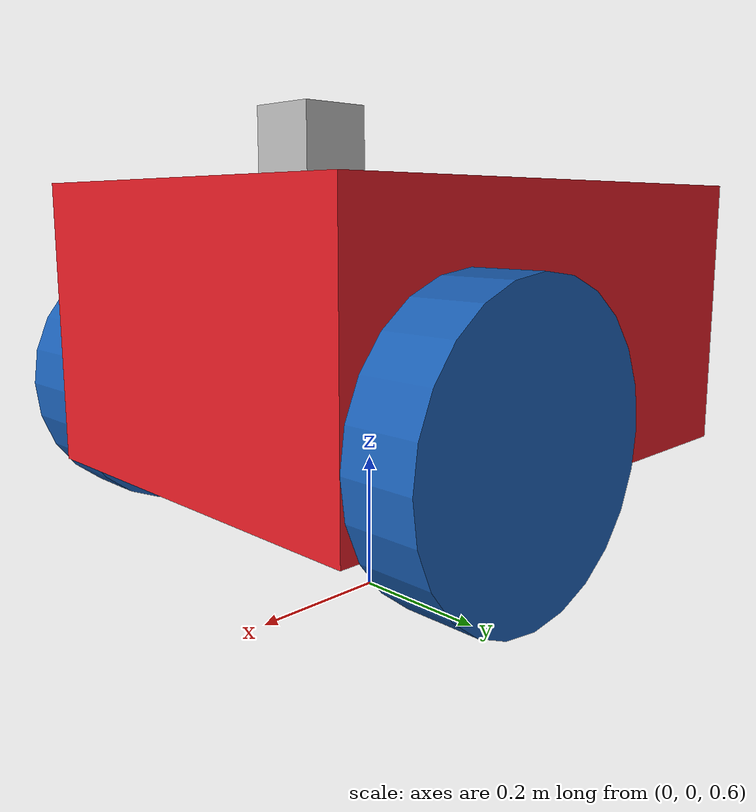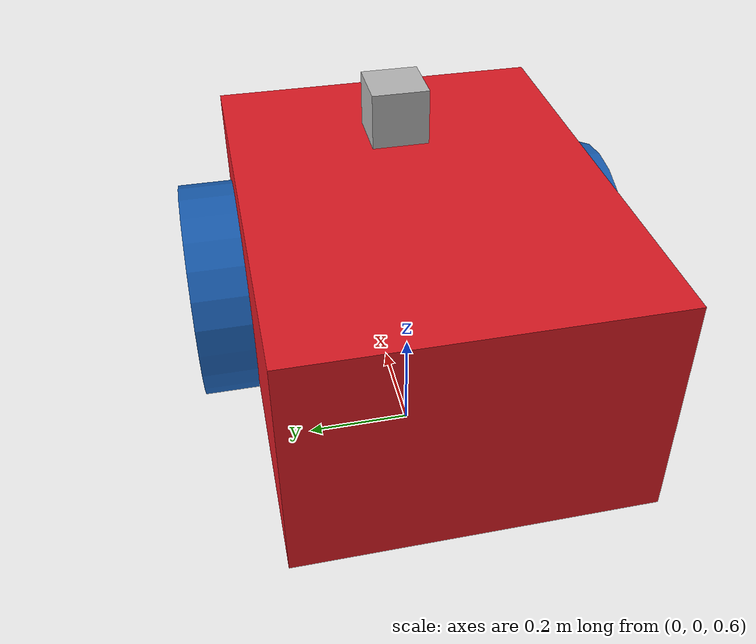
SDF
<?xml version='1.0'?>
<sdf version='1.7'>
  <model name='mobilerobot'>
    <link name='link_0'>
      <inertial>
        <mass>1164.77</mass>
        <inertia>
          <ixx>53.7577</ixx>
          <ixy>0</ixy>
          <ixz>0</ixz>
          <iyy>94.4479</iyy>
          <iyz>0</iyz>
          <izz>125.817</izz>
        </inertia>
        <pose>0 0 0 0 -0 0</pose>
      </inertial>
      <pose>-0.076555 -0.007597 1.000000 0 -0 0</pose>
      <gravity>1</gravity>
      <self_collide>0</self_collide>
      <kinematic>0</kinematic>
      <enable_wind>0</enable_wind>
      <visual name='visual'>
        <pose>0 0 0 0 -0 0</pose>
        <geometry>
          <box>
            <size>0.8 0.6 0.4</size>
          </box>
        </geometry>
        <material>
          <lighting>1</lighting>
          <script>
            <uri>file://media/materials/scripts/gazebo.material</uri>
            <name>Gazebo/Grey</name>
          </script>
          <shader type='pixel'>
            <normal_map>__default__</normal_map>
          </shader>
          <ambient>0.878 0.106 0.141 1</ambient>
          <diffuse>0.7 0.7 0.7 1</diffuse>
          <specular>0.01 0.01 0.01 1</specular>
          <emissive>0 0 0 1</emissive>
        </material>
        <transparency>0</transparency>
        <cast_shadows>1</cast_shadows>
      </visual>
      <collision name='collision'>
        <laser_retro>0</laser_retro>
        <max_contacts>10</max_contacts>
        <pose>0 0 0 0 -0 0</pose>
        <geometry>
          <box>
            <size>0.8 0.6 0.399999</size>
          </box>
        </geometry>
        <surface>
          <friction>
            <ode>
              <mu>1</mu>
              <mu2>1</mu2>
              <fdir1>0 0 0</fdir1>
              <slip1>0</slip1>
              <slip2>0</slip2>
            </ode>
            <torsional>
              <coefficient>1</coefficient>
              <patch_radius>0</patch_radius>
              <surface_radius>0</surface_radius>
              <use_patch_radius>1</use_patch_radius>
              <ode>
                <slip>0</slip>
              </ode>
            </torsional>
          </friction>
          <bounce>
            <restitution_coefficient>0</restitution_coefficient>
            <threshold>1e+06</threshold>
          </bounce>
          <contact>
            <collide_without_contact>0</collide_without_contact>
            <collide_without_contact_bitmask>1</collide_without_contact_bitmask>
            <collide_bitmask>1</collide_bitmask>
            <ode>
              <soft_cfm>0</soft_cfm>
              <soft_erp>0.2</soft_erp>
              <kp>1e+13</kp>
              <kd>1</kd>
              <max_vel>0.01</max_vel>
              <min_depth>0</min_depth>
            </ode>
            <bullet>
              <split_impulse>1</split_impulse>
              <split_impulse_penetration_threshold>-0.01</split_impulse_penetration_threshold>
              <soft_cfm>0</soft_cfm>
              <soft_erp>0.2</soft_erp>
              <kp>1e+13</kp>
              <kd>1</kd>
            </bullet>
          </contact>
        </surface>
      </collision>
    </link>
    <link name='link_1_clone'>
      <inertial>
        <mass>1</mass>
        <inertia>
          <ixx>0.145833</ixx>
          <ixy>0</ixy>
          <ixz>0</ixz>
          <iyy>0.145833</iyy>
          <iyz>0</iyz>
          <izz>0.125</izz>
        </inertia>
        <pose>0 0 0 0 -0 0</pose>
      </inertial>
      <pose>0.123444 0.342422 0.9 1.5707 -0 0</pose>
      <gravity>1</gravity>
      <self_collide>0</self_collide>
      <kinematic>0</kinematic>
      <enable_wind>0</enable_wind>
      <visual name='visual'>
        <pose>0 0 0 0 -0 0</pose>
        <geometry>
          <cylinder>
            <radius>0.2</radius>
            <length>0.1</length>
          </cylinder>
        </geometry>
        <material>
          <lighting>1</lighting>
          <script>
            <uri>file://media/materials/scripts/gazebo.material</uri>
            <name>Gazebo/Grey</name>
          </script>
          <shader type='pixel'>
            <normal_map>__default__</normal_map>
          </shader>
          <ambient>0.102 0.373 0.706 1</ambient>
          <diffuse>0.7 0.7 0.7 1</diffuse>
          <specular>0.01 0.01 0.01 1</specular>
          <emissive>0 0 0 1</emissive>
        </material>
        <transparency>0</transparency>
        <cast_shadows>1</cast_shadows>
      </visual>
      <collision name='collision'>
        <laser_retro>0</laser_retro>
        <max_contacts>10</max_contacts>
        <pose>0 0 0 0 -0 0</pose>
        <geometry>
          <cylinder>
            <radius>0.2</radius>
            <length>0.1</length>
          </cylinder>
        </geometry>
        <surface>
          <friction>
            <ode>
              <mu>1</mu>
              <mu2>1</mu2>
              <fdir1>0 0 0</fdir1>
              <slip1>0</slip1>
              <slip2>0</slip2>
            </ode>
            <torsional>
              <coefficient>1</coefficient>
              <patch_radius>0</patch_radius>
              <surface_radius>0</surface_radius>
              <use_patch_radius>1</use_patch_radius>
              <ode>
                <slip>0</slip>
              </ode>
            </torsional>
          </friction>
          <bounce>
            <restitution_coefficient>0</restitution_coefficient>
            <threshold>1e+06</threshold>
          </bounce>
          <contact>
            <collide_without_contact>0</collide_without_contact>
            <collide_without_contact_bitmask>1</collide_without_contact_bitmask>
            <collide_bitmask>1</collide_bitmask>
            <ode>
              <soft_cfm>0</soft_cfm>
              <soft_erp>0.2</soft_erp>
              <kp>1e+13</kp>
              <kd>1</kd>
              <max_vel>0.01</max_vel>
              <min_depth>0</min_depth>
            </ode>
            <bullet>
              <split_impulse>1</split_impulse>
              <split_impulse_penetration_threshold>-0.01</split_impulse_penetration_threshold>
              <soft_cfm>0</soft_cfm>
              <soft_erp>0.2</soft_erp>
              <kp>1e+13</kp>
              <kd>1</kd>
            </bullet>
          </contact>
        </surface>
      </collision>
    </link>
    <link name='link_1_clone_clone'>
      <inertial>
        <mass>1</mass>
        <inertia>
          <ixx>0.145833</ixx>
          <ixy>0</ixy>
          <ixz>0</ixz>
          <iyy>0.145833</iyy>
          <iyz>0</iyz>
          <izz>0.125</izz>
        </inertia>
        <pose>0 0 0 0 -0 0</pose>
      </inertial>
      <pose>0.123444 -0.357597 0.9 1.5707 -0 0</pose>
      <gravity>1</gravity>
      <self_collide>0</self_collide>
      <kinematic>0</kinematic>
      <enable_wind>0</enable_wind>
      <visual name='visual'>
        <pose>0 0 0 0 -0 0</pose>
        <geometry>
          <cylinder>
            <radius>0.2</radius>
            <length>0.1</length>
          </cylinder>
        </geometry>
        <material>
          <lighting>1</lighting>
          <script>
            <uri>file://media/materials/scripts/gazebo.material</uri>
            <name>Gazebo/Grey</name>
          </script>
          <shader type='pixel'>
            <normal_map>__default__</normal_map>
          </shader>
          <ambient>0.102 0.373 0.706 1</ambient>
          <diffuse>0.7 0.7 0.7 1</diffuse>
          <specular>0.01 0.01 0.01 1</specular>
          <emissive>0 0 0 1</emissive>
        </material>
        <transparency>0</transparency>
        <cast_shadows>1</cast_shadows>
      </visual>
      <collision name='collision'>
        <laser_retro>0</laser_retro>
        <max_contacts>10</max_contacts>
        <pose>0 0 0 0 -0 0</pose>
        <geometry>
          <cylinder>
            <radius>0.2</radius>
            <length>0.1</length>
          </cylinder>
        </geometry>
        <surface>
          <friction>
            <ode>
              <mu>1</mu>
              <mu2>1</mu2>
              <fdir1>0 0 0</fdir1>
              <slip1>0</slip1>
              <slip2>0</slip2>
            </ode>
            <torsional>
              <coefficient>1</coefficient>
              <patch_radius>0</patch_radius>
              <surface_radius>0</surface_radius>
              <use_patch_radius>1</use_patch_radius>
              <ode>
                <slip>0</slip>
              </ode>
            </torsional>
          </friction>
          <bounce>
            <restitution_coefficient>0</restitution_coefficient>
            <threshold>1e+06</threshold>
          </bounce>
          <contact>
            <collide_without_contact>0</collide_without_contact>
            <collide_without_contact_bitmask>1</collide_without_contact_bitmask>
            <collide_bitmask>1</collide_bitmask>
            <ode>
              <soft_cfm>0</soft_cfm>
              <soft_erp>0.2</soft_erp>
              <kp>1e+13</kp>
              <kd>1</kd>
              <max_vel>0.01</max_vel>
              <min_depth>0</min_depth>
            </ode>
            <bullet>
              <split_impulse>1</split_impulse>
              <split_impulse_penetration_threshold>-0.01</split_impulse_penetration_threshold>
              <soft_cfm>0</soft_cfm>
              <soft_erp>0.2</soft_erp>
              <kp>1e+13</kp>
              <kd>1</kd>
            </bullet>
          </contact>
        </surface>
      </collision>
    </link>
    <link name='link_2'>
      <inertial>
        <mass>1</mass>
        <inertia>
          <ixx>0.1</ixx>
          <ixy>0</ixy>
          <ixz>0</ixz>
          <iyy>0.1</iyy>
          <iyz>0</iyz>
          <izz>0.1</izz>
        </inertia>
        <pose>0 0 0 0 -0 0</pose>
      </inertial>
      <pose>-0.276557 -0.007597 0.9 0 -0 0</pose>
      <gravity>1</gravity>
      <self_collide>0</self_collide>
      <kinematic>0</kinematic>
      <enable_wind>0</enable_wind>
      <visual name='visual'>
        <pose>0 0 0 0 -0 0</pose>
        <geometry>
          <sphere>
            <radius>0.2</radius>
          </sphere>
        </geometry>
        <material>
          <lighting>1</lighting>
          <script>
            <uri>file://media/materials/scripts/gazebo.material</uri>
            <name>Gazebo/Grey</name>
          </script>
          <shader type='pixel'>
            <normal_map>__default__</normal_map>
          </shader>
          <ambient>0.149 0.635 0.412 1</ambient>
          <diffuse>0.7 0.7 0.7 1</diffuse>
          <specular>0.01 0.01 0.01 1</specular>
          <emissive>0 0 0 1</emissive>
        </material>
        <transparency>0</transparency>
        <cast_shadows>1</cast_shadows>
      </visual>
      <collision name='collision'>
        <laser_retro>0</laser_retro>
        <max_contacts>10</max_contacts>
        <pose>0 0 0 0 -0 0</pose>
        <geometry>
          <sphere>
            <radius>0.2</radius>
          </sphere>
        </geometry>
        <surface>
          <friction>
            <ode>
              <mu>1</mu>
              <mu2>1</mu2>
              <fdir1>0 0 0</fdir1>
              <slip1>0</slip1>
              <slip2>0</slip2>
            </ode>
            <torsional>
              <coefficient>1</coefficient>
              <patch_radius>0</patch_radius>
              <surface_radius>0</surface_radius>
              <use_patch_radius>1</use_patch_radius>
              <ode>
                <slip>0</slip>
              </ode>
            </torsional>
          </friction>
          <bounce>
            <restitution_coefficient>0</restitution_coefficient>
            <threshold>1e+06</threshold>
          </bounce>
          <contact>
            <collide_without_contact>0</collide_without_contact>
            <collide_without_contact_bitmask>1</collide_without_contact_bitmask>
            <collide_bitmask>1</collide_bitmask>
            <ode>
              <soft_cfm>0</soft_cfm>
              <soft_erp>0.2</soft_erp>
              <kp>1e+13</kp>
              <kd>1</kd>
              <max_vel>0.01</max_vel>
              <min_depth>0</min_depth>
            </ode>
            <bullet>
              <split_impulse>1</split_impulse>
              <split_impulse_penetration_threshold>-0.01</split_impulse_penetration_threshold>
              <soft_cfm>0</soft_cfm>
              <soft_erp>0.2</soft_erp>
              <kp>1e+13</kp>
              <kd>1</kd>
            </bullet>
          </contact>
        </surface>
      </collision>
    </link>
    <model name='camera'>
      <pose>0.106224 -3.5e-05 1.248740 0 0 0</pose>
      <link name='link'>
        <inertial>
          <mass>0.1</mass>
          <inertia>
            <ixx>0.000166667</ixx>
            <iyy>0.000166667</iyy>
            <izz>0.000166667</izz>
            <ixy>0</ixy>
            <ixz>0</ixz>
            <iyz>0</iyz>
          </inertia>
          <pose>0 0 0 0 -0 0</pose>
        </inertial>
        <collision name='collision'>
          <geometry>
            <box>
              <size>0.1 0.1 0.1</size>
            </box>
          </geometry>
          <max_contacts>10</max_contacts>
          <surface>
            <contact>
              <ode/>
            </contact>
            <bounce/>
            <friction>
              <torsional>
                <ode/>
              </torsional>
              <ode/>
            </friction>
          </surface>
        </collision>
        <visual name='visual'>
          <geometry>
            <box>
              <size>0.1 0.1 0.1</size>
            </box>
          </geometry>
        </visual>
        <sensor name='camera' type='camera'>
          <camera>
            <horizontal_fov>1.047</horizontal_fov>
            <image>
              <width>320</width>
              <height>240</height>
            </image>
            <clip>
              <near>0.1</near>
              <far>100</far>
            </clip>
          </camera>
          <always_on>1</always_on>
          <update_rate>30</update_rate>
          <visualize>1</visualize>
        </sensor>
        <self_collide>0</self_collide>
        <enable_wind>0</enable_wind>
        <kinematic>0</kinematic>
      </link>
    </model>
    <joint name='link_0_JOINT_0' type='revolute'>
      <parent>link_0</parent>
      <child>link_1_clone_clone</child>
      <pose>0 0 0 0 -0 0</pose>
      <axis>
        <xyz>0 0 -1</xyz>
        <limit>
          <lower>-1.79769e+308</lower>
          <upper>1.79769e+308</upper>
          <effort>-1</effort>
          <velocity>-1</velocity>
        </limit>
        <dynamics>
          <spring_reference>0</spring_reference>
          <spring_stiffness>0</spring_stiffness>
          <damping>0</damping>
          <friction>0</friction>
        </dynamics>
      </axis>
      <physics>
        <ode>
          <limit>
            <cfm>0</cfm>
            <erp>0.2</erp>
          </limit>
          <suspension>
            <cfm>0</cfm>
            <erp>0.2</erp>
          </suspension>
        </ode>
      </physics>
    </joint>
    <joint name='link_0_JOINT_1' type='revolute'>
      <parent>link_0</parent>
      <child>link_1_clone</child>
      <pose>0 0 0 -0.01 0 0</pose>
      <axis>
        <xyz>0 0 1</xyz>
        <limit>
          <lower>-1.79769e+308</lower>
          <upper>1.79769e+308</upper>
          <effort>-1</effort>
          <velocity>-1</velocity>
        </limit>
        <dynamics>
          <spring_reference>0</spring_reference>
          <spring_stiffness>0</spring_stiffness>
          <damping>0</damping>
          <friction>0</friction>
        </dynamics>
      </axis>
      <physics>
        <ode>
          <limit>
            <cfm>0</cfm>
            <erp>0.2</erp>
          </limit>
          <suspension>
            <cfm>0</cfm>
            <erp>0.2</erp>
          </suspension>
        </ode>
      </physics>
    </joint>
    <joint name='link_0_JOINT_7' type='ball'>
      <parent>link_0</parent>
      <child>link_2</child>
      <pose>0 0 0 0 -0 0</pose>
      <physics>
        <ode>
          <limit>
            <cfm>0</cfm>
            <erp>0.2</erp>
          </limit>
          <suspension>
            <cfm>0</cfm>
            <erp>0.2</erp>
          </suspension>
        </ode>
      </physics>
    </joint>
    <joint name='link_0_JOINT_8' type='fixed'>
      <parent>link_0</parent>
      <child>camera::link</child>
      <pose>0 0 0 0 -0.02 0</pose>
      <physics>
        <ode>
          <limit>
            <cfm>0</cfm>
            <erp>0.2</erp>
          </limit>
          <suspension>
            <cfm>0</cfm>
            <erp>0.2</erp>
          </suspension>
        </ode>
      </physics>
    </joint>
    <static>0</static>
    <allow_auto_disable>1</allow_auto_disable>
  </model>
</sdf>
